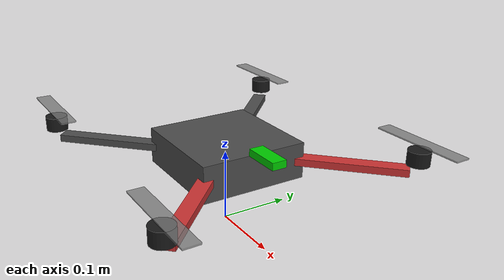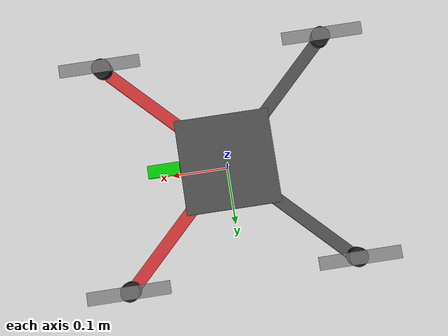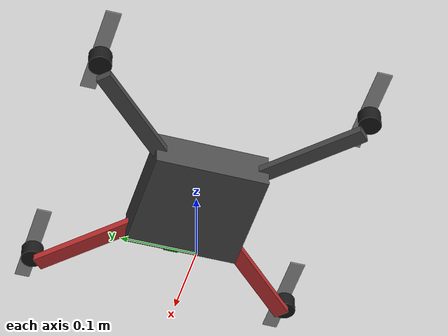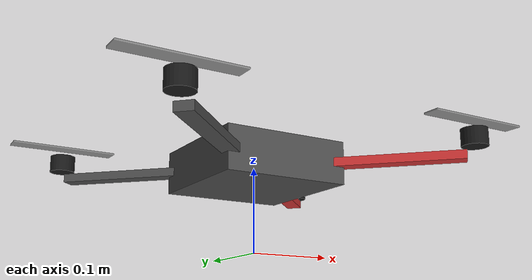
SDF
<?xml version="1.0" ?>
<sdf version="1.6">
  <model name="quadcopter">
    <pose>0 0 0.1 0 0 0</pose>

    <!-- Main body -->
    <link name="base_link">
      <inertial>
        <mass>1.5</mass>
        <inertia>
          <ixx>0.029</ixx>
          <iyy>0.029</iyy>
          <izz>0.055</izz>
        </inertia>
      </inertial>

      <!-- Central body -->
      <visual name="body_visual">
        <geometry>
          <box>
            <size>0.15 0.15 0.05</size>
          </box>
        </geometry>
        <material>
          <ambient>0.2 0.2 0.2 1</ambient>
          <diffuse>0.3 0.3 0.3 1</diffuse>
        </material>
      </visual>

      <collision name="body_collision">
        <geometry>
          <box>
            <size>0.15 0.15 0.05</size>
          </box>
        </geometry>
      </collision>

      <!-- Arms -->
      <!-- Front-Right arm -->
      <visual name="arm_fr">
        <pose>0.1 -0.1 0 0 0 -0.785</pose>
        <geometry>
          <box><size>0.2 0.02 0.01</size></box>
        </geometry>
        <material>
          <ambient>0.8 0.2 0.2 1</ambient>
          <diffuse>0.8 0.2 0.2 1</diffuse>
        </material>
      </visual>

      <!-- Front-Left arm -->
      <visual name="arm_fl">
        <pose>0.1 0.1 0 0 0 0.785</pose>
        <geometry>
          <box><size>0.2 0.02 0.01</size></box>
        </geometry>
        <material>
          <ambient>0.8 0.2 0.2 1</ambient>
          <diffuse>0.8 0.2 0.2 1</diffuse>
        </material>
      </visual>

      <!-- Back-Right arm -->
      <visual name="arm_br">
        <pose>-0.1 -0.1 0 0 0 0.785</pose>
        <geometry>
          <box><size>0.2 0.02 0.01</size></box>
        </geometry>
        <material>
          <ambient>0.2 0.2 0.2 1</ambient>
          <diffuse>0.3 0.3 0.3 1</diffuse>
        </material>
      </visual>

      <!-- Back-Left arm -->
      <visual name="arm_bl">
        <pose>-0.1 0.1 0 0 0 -0.785</pose>
        <geometry>
          <box><size>0.2 0.02 0.01</size></box>
        </geometry>
        <material>
          <ambient>0.2 0.2 0.2 1</ambient>
          <diffuse>0.3 0.3 0.3 1</diffuse>
        </material>
      </visual>

      <!-- Direction indicator (front) -->
      <visual name="front_indicator">
        <pose>0.1 0 0.03 0 0 0</pose>
        <geometry>
          <box><size>0.05 0.02 0.01</size></box>
        </geometry>
        <material>
          <ambient>0 0.8 0 1</ambient>
          <diffuse>0 0.8 0 1</diffuse>
        </material>
      </visual>
    </link>

    <!-- Motor 0 (Front-Right, CW) -->
    <link name="motor_0">
      <pose>0.177 -0.177 0.02 0 0 0</pose>
      <inertial>
        <mass>0.05</mass>
        <inertia>
          <ixx>0.00001</ixx>
          <iyy>0.00001</iyy>
          <izz>0.00002</izz>
        </inertia>
      </inertial>
      <visual name="motor_visual">
        <geometry>
          <cylinder>
            <radius>0.015</radius>
            <length>0.02</length>
          </cylinder>
        </geometry>
        <material>
          <ambient>0.1 0.1 0.1 1</ambient>
        </material>
      </visual>
    </link>

    <joint name="motor_0_joint" type="fixed">
      <parent>base_link</parent>
      <child>motor_0</child>
    </joint>

    <!-- Propeller 0 -->
    <link name="prop_0">
      <pose>0.177 -0.177 0.04 0 0 0</pose>
      <inertial>
        <mass>0.01</mass>
        <inertia>
          <ixx>0.00001</ixx>
          <iyy>0.00001</iyy>
          <izz>0.00002</izz>
        </inertia>
      </inertial>
      <visual name="prop_visual">
        <geometry>
          <box><size>0.127 0.02 0.002</size></box>
        </geometry>
        <material>
          <ambient>0.5 0.5 0.5 0.8</ambient>
        </material>
      </visual>
    </link>

    <joint name="prop_0_joint" type="revolute">
      <parent>motor_0</parent>
      <child>prop_0</child>
      <axis>
        <xyz>0 0 1</xyz>
        <limit>
          <lower>-1e16</lower>
          <upper>1e16</upper>
        </limit>
      </axis>
    </joint>

    <!-- Motor 1 (Front-Left, CCW) -->
    <link name="motor_1">
      <pose>0.177 0.177 0.02 0 0 0</pose>
      <inertial>
        <mass>0.05</mass>
        <inertia>
          <ixx>0.00001</ixx>
          <iyy>0.00001</iyy>
          <izz>0.00002</izz>
        </inertia>
      </inertial>
      <visual name="motor_visual">
        <geometry>
          <cylinder>
            <radius>0.015</radius>
            <length>0.02</length>
          </cylinder>
        </geometry>
        <material>
          <ambient>0.1 0.1 0.1 1</ambient>
        </material>
      </visual>
    </link>

    <joint name="motor_1_joint" type="fixed">
      <parent>base_link</parent>
      <child>motor_1</child>
    </joint>

    <link name="prop_1">
      <pose>0.177 0.177 0.04 0 0 0</pose>
      <inertial>
        <mass>0.01</mass>
        <inertia>
          <ixx>0.00001</ixx>
          <iyy>0.00001</iyy>
          <izz>0.00002</izz>
        </inertia>
      </inertial>
      <visual name="prop_visual">
        <geometry>
          <box><size>0.127 0.02 0.002</size></box>
        </geometry>
        <material>
          <ambient>0.5 0.5 0.5 0.8</ambient>
        </material>
      </visual>
    </link>

    <joint name="prop_1_joint" type="revolute">
      <parent>motor_1</parent>
      <child>prop_1</child>
      <axis>
        <xyz>0 0 1</xyz>
      </axis>
    </joint>

    <!-- Motor 2 (Back-Right, CCW) -->
    <link name="motor_2">
      <pose>-0.177 -0.177 0.02 0 0 0</pose>
      <inertial>
        <mass>0.05</mass>
        <inertia>
          <ixx>0.00001</ixx>
          <iyy>0.00001</iyy>
          <izz>0.00002</izz>
        </inertia>
      </inertial>
      <visual name="motor_visual">
        <geometry>
          <cylinder>
            <radius>0.015</radius>
            <length>0.02</length>
          </cylinder>
        </geometry>
        <material>
          <ambient>0.1 0.1 0.1 1</ambient>
        </material>
      </visual>
    </link>

    <joint name="motor_2_joint" type="fixed">
      <parent>base_link</parent>
      <child>motor_2</child>
    </joint>

    <link name="prop_2">
      <pose>-0.177 -0.177 0.04 0 0 0</pose>
      <inertial>
        <mass>0.01</mass>
        <inertia>
          <ixx>0.00001</ixx>
          <iyy>0.00001</iyy>
          <izz>0.00002</izz>
        </inertia>
      </inertial>
      <visual name="prop_visual">
        <geometry>
          <box><size>0.127 0.02 0.002</size></box>
        </geometry>
        <material>
          <ambient>0.5 0.5 0.5 0.8</ambient>
        </material>
      </visual>
    </link>

    <joint name="prop_2_joint" type="revolute">
      <parent>motor_2</parent>
      <child>prop_2</child>
      <axis>
        <xyz>0 0 1</xyz>
      </axis>
    </joint>

    <!-- Motor 3 (Back-Left, CW) -->
    <link name="motor_3">
      <pose>-0.177 0.177 0.02 0 0 0</pose>
      <inertial>
        <mass>0.05</mass>
        <inertia>
          <ixx>0.00001</ixx>
          <iyy>0.00001</iyy>
          <izz>0.00002</izz>
        </inertia>
      </inertial>
      <visual name="motor_visual">
        <geometry>
          <cylinder>
            <radius>0.015</radius>
            <length>0.02</length>
          </cylinder>
        </geometry>
        <material>
          <ambient>0.1 0.1 0.1 1</ambient>
        </material>
      </visual>
    </link>

    <joint name="motor_3_joint" type="fixed">
      <parent>base_link</parent>
      <child>motor_3</child>
    </joint>

    <link name="prop_3">
      <pose>-0.177 0.177 0.04 0 0 0</pose>
      <inertial>
        <mass>0.01</mass>
        <inertia>
          <ixx>0.00001</ixx>
          <iyy>0.00001</iyy>
          <izz>0.00002</izz>
        </inertia>
      </inertial>
      <visual name="prop_visual">
        <geometry>
          <box><size>0.127 0.02 0.002</size></box>
        </geometry>
        <material>
          <ambient>0.5 0.5 0.5 0.8</ambient>
        </material>
      </visual>
    </link>

    <joint name="prop_3_joint" type="revolute">
      <parent>motor_3</parent>
      <child>prop_3</child>
      <axis>
        <xyz>0 0 1</xyz>
      </axis>
    </joint>

    <!-- IMU sensor -->
    <link name="imu_link">
      <pose>0 0 0 0 0 0</pose>
      <inertial>
        <mass>0.001</mass>
      </inertial>
      <sensor name="imu_sensor" type="imu">
        <always_on>true</always_on>
        <update_rate>1000</update_rate>
        <imu>
          <angular_velocity>
            <x>
              <noise type="gaussian">
                <mean>0</mean>
                <stddev>0.001</stddev>
              </noise>
            </x>
            <y>
              <noise type="gaussian">
                <mean>0</mean>
                <stddev>0.001</stddev>
              </noise>
            </y>
            <z>
              <noise type="gaussian">
                <mean>0</mean>
                <stddev>0.001</stddev>
              </noise>
            </z>
          </angular_velocity>
          <linear_acceleration>
            <x>
              <noise type="gaussian">
                <mean>0</mean>
                <stddev>0.01</stddev>
              </noise>
            </x>
            <y>
              <noise type="gaussian">
                <mean>0</mean>
                <stddev>0.01</stddev>
              </noise>
            </y>
            <z>
              <noise type="gaussian">
                <mean>0</mean>
                <stddev>0.01</stddev>
              </noise>
            </z>
          </linear_acceleration>
        </imu>
      </sensor>
    </link>

    <joint name="imu_joint" type="fixed">
      <parent>base_link</parent>
      <child>imu_link</child>
    </joint>

  </model>
</sdf>
